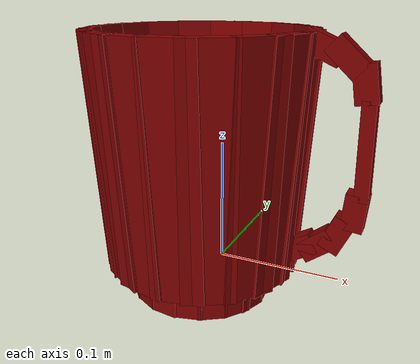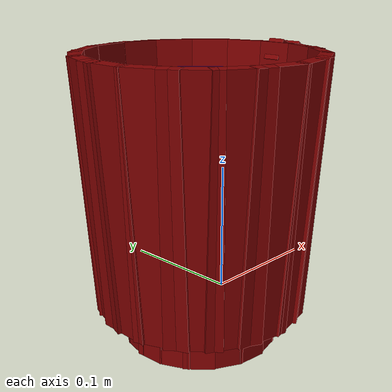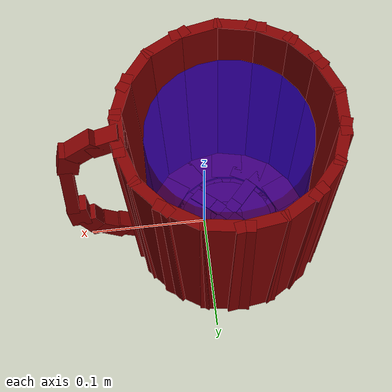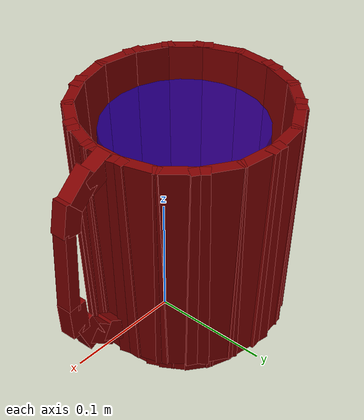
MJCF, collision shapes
<mujoco model="model">
  <option timestep="0.002" gravity="0.0 0.0 -9.81"/>
  <compiler angle="radian"/>
  <asset>
    <mesh file="visuals/blade.obj" name="blade_vis"/>
    <mesh file="visuals/pitcher.obj" name="pitcher_vis"/>
    <mesh file="visuals/pitcher_main.obj" name="pitcher_main_vis"/>
    <texture file="visuals/T_BC001.png" name="pitcher_material" type="2d"/>
    <material name="pitcher_material" rgba="1 1 1 1.0" texture="pitcher_material" shininess="0.4472135901451111" specular="0.3103448502657381"/>
    <texture file="visuals/T_BC001.png" name="blade_material" type="2d"/>
    <material name="blade_material" rgba="1 1 1 1.0" texture="blade_material" shininess="0.4472135901451111" specular="0.3103448502657381"/>
    <material name="pitcher_main_material" rgba="0.03639296442270279 0.03639296442270279 0.03639296442270279 0.75" shininess="0.4472135901451111" specular="0.3103448502657381"/>
  </asset>
  <default>
    <default class="visual">
      <geom conaffinity="0" contype="0" group="1" type="mesh"/>
    </default>
    <default class="collision">
      <geom group="0" rgba="0.5 0 0 0.5" density="1.0" solref="0.004 1" solimp="0.998 0.998 0.001"/>
    </default>
    <default class="spawn">
      <geom group="0" rgba="1 1 1 0.5" contype="0" conaffinity="0"/>
      <site group="0" rgba="1 1 1 0.5"/>
    </default>
    <default class="region">
      <geom group="1" conaffinity="0" contype="0" rgba="0 1 0 0" mass="0"/>
    </default>
  </default>
  <worldbody>
    <body>
      <body name="object">
        <body name="pitcher">
          <geom mesh="pitcher_vis" type="mesh" solimp="0.998 0.998 0.001" solref="0.001 1" friction="0.95 0.3 0.1" class="visual" material="pitcher_material"/>
          <geom type="cylinder" pos="-0.01946600 0.00450799 -0.00774487" size="0.04143597558140755 0.007566837128251791" quat="1.0 0.0 0.0 0.0" class="collision"/>
          <geom type="cylinder" pos="-0.01946600 0.00450799 0.00280278" size="0.01418313104659319 0.012319022789597511" quat="1.0 0.0 0.0 0.0" class="collision"/>
          <geom class="collision" type="box" pos="0.11265081 0.00453653 0.10631804" size="0.005383961834013462 0.007043835241347551 0.038118090480566025" quat="1.0 0.0 0.0 0.0" name="pitcher_handle_0"/>
          <geom class="collision" type="box" pos="0.10898329 0.00453653 0.15569367" size="0.008588218130171299 0.007043835241347551 0.014595777727663517" quat="0.9973220229148865 -8.794946379248741e-16 -0.07313574850559235 -9.826434776982751e-09" name="pitcher_handle_1"/>
          <geom class="collision" type="box" pos="0.09490363 0.00453653 0.17371806" size="0.008588218130171299 0.007043835241347551 0.014595777727663517" quat="0.9171411991119385 -8.441334687725541e-15 -0.398562490940094 -5.355040144650047e-08" name="pitcher_handle_2"/>
          <geom class="collision" type="box" pos="0.07812853 0.00453653 0.17960113" size="0.008588218130171299 0.007043835241347551 0.014595777727663517" quat="0.5457764863967896 -6.594723411020714e-14 0.8379307985305786 1.1258333643127116e-07" name="pitcher_handle_3"/>
          <geom class="collision" type="box" pos="0.08133287 0.00453653 0.02587470" size="0.008588218130171299 0.007043835241347551 0.014595777727663517" quat="0.4469589293003082 -2.5602803432889232e-08 -0.8945544958114624 1.0351514134754325e-07" name="pitcher_handle_4"/>
          <geom class="collision" type="box" pos="0.09657864 0.00453653 0.03780231" size="0.008588218130171299 0.007043835241347551 0.014595777727663517" quat="0.9753509759902954 1.99597174344035e-08 0.2206592708826065 -7.55773399419013e-08" name="pitcher_handle_5"/>
          <geom class="collision" type="box" pos="0.10848565 0.00453653 0.05852125" size="0.008588218130171299 0.007043835241347551 0.014595777727663517" quat="0.9985536336898804 3.814504545562869e-10 0.05376478657126427 -1.2425408257854542e-08" name="pitcher_handle_6"/>
          <geom class="collision" type="box" pos="0.06625793 0.00453653 0.02041277" size="0.008588218130171299 0.007043835241347551 0.014595777727663517" quat="0.503902018070221 -1.1074689609813504e-08 -0.8637608289718628 1.0884013335044074e-07" name="pitcher_handle_7"/>
          <body name="blade">
            <geom mesh="blade_vis" type="mesh" solimp="0.998 0.998 0.001" solref="0.001 1" friction="0.95 0.3 0.1" class="visual" material="blade_material"/>
            <geom type="box" pos="-0.00143279 0.02232428 0.02188554" size="0.01079723984003067 0.005815119948238134 0.000714024412445724" quat="0.9160147905349731 0.0469263419508934 -0.11247249692678452 0.3821842074394226" class="collision"/>
            <geom type="box" pos="-0.01261811 0.01105387 0.01896857" size="0.005312731955200434 0.005815119948238134 0.0007140241796150804" quat="0.9225776791572571 0.01007954590022564 -0.024158546701073647 0.3849223256111145" class="collision"/>
            <geom type="box" pos="-0.03743484 -0.01396034 0.02174274" size="0.01079723984003067 0.005815119948238134 0.000714024412445724" quat="0.3842061460018158 -0.10841871798038483 -0.04944855719804764 -0.9155248999595642" class="collision"/>
            <geom type="box" pos="-0.02628030 -0.00263698 0.01891433" size="0.005312731955200434 0.005815119948238134 0.0007140241796150804" quat="0.38717636466026306 -0.02017034962773323 -0.012396342121064663 -0.9217016696929932" class="collision"/>
            <geom type="box" pos="-0.03744579 0.02238029 0.01561825" size="0.01079723984003067 0.005815119948238134 0.000714024412445724" quat="0.3805498480796814 -0.11204993724822998 0.046787749975919724 0.9167538285255432" class="collision"/>
            <geom type="box" pos="-0.01264914 -0.00263521 0.01855803" size="0.005312731955200434 0.005815119948238134 0.0007140241796150804" quat="0.9242292642593384 0.005514008924365044 0.023519031703472137 -0.38107314705848694" class="collision"/>
            <geom type="box" pos="-0.00140377 -0.01386479 0.01571539" size="0.01079723984003067 0.005815119948238134 0.000714024412445724" quat="0.917720377445221 0.0420127734541893 0.11199421435594559 -0.37878960371017456" class="collision"/>
            <geom type="box" pos="-0.02624793 0.01111868 0.01852104" size="0.005312731955200434 0.005815119948238134 0.0007140241796150804" quat="0.38328221440315247 -0.023667166009545326 0.010098296217620373 0.9232727885246277" class="collision"/>
            <geom type="box" pos="-0.01264914 -0.00263521 0.01855803" size="0.005312731955200434 0.005815119948238134 0.0007140241796150804" quat="0.9242292642593384 0.005514008924365044 0.023519031703472137 -0.38107314705848694" class="collision"/>
            <geom type="box" pos="-0.01942937 0.00421665 0.01875078" size="0.004505713935941458 0.004514103289693594 0.0007243526051752269" quat="0.9257199764251709 0.0 -0.0 -0.37820965051651" class="collision"/>
          </body>
          <body name="pitcher_main">
            <geom class="region" type="cylinder" size="0.06828898936510086 0.07171516120433807" pos="-0.01954737 0.00488804 0.09894828" rgba="0 0 1 0.5" name="reg_int"/>
            <geom mesh="pitcher_main_vis" type="mesh" solimp="0.998 0.998 0.001" solref="0.001 1" friction="0.95 0.3 0.1" class="visual" material="pitcher_main_material"/>
            <geom type="box" pos="0.06165763 0.00451493 0.09213771" size="0.004797820001840591 0.021256864070892334 0.09871997684240341" quat="0.9994385838508606 -1.4167017795566278e-15 0.03350444138050079 4.501618189323153e-09" class="collision"/>
            <geom type="box" pos="0.04225437 0.05740355 0.09213771" size="0.004797819536179304 0.02125686965882778 0.09871996939182281" quat="0.9382874965667725 -0.0115397023037076 0.031454458832740784 0.3442296087741852" class="collision"/>
            <geom type="box" pos="-0.00827662 0.08543458 0.09213771" size="0.004797815345227718 0.021256867796182632 0.09871996939182281" quat="0.7561712265014648 -0.021907974034547806 0.0253493282943964 0.6535155177116394" class="collision"/>
            <geom type="box" pos="-0.06449462 0.07321498 0.09213771" size="0.004797819536179304 0.021256865933537483 0.09871996194124222" quat="0.47799187898635864 -0.02942420355975628 0.016023846343159676 0.8777250051498413" class="collision"/>
            <geom type="box" pos="-0.09809421 0.02919597 0.09213770" size="0.004797817207872868 0.021256865933537483 0.09871994704008102" quat="0.15259899199008942 -0.03311135992407799 0.005115584935992956 0.9877201318740845" class="collision"/>
            <geom type="box" pos="-0.09525025 -0.02780454 0.09213771" size="0.004797815345227718 0.021256865933537483 0.09871996939182281" quat="0.20162884891033173 0.032815542072057724 0.006759255193173885 -0.9788888096809387" class="collision"/>
            <geom type="box" pos="-0.05970805 -0.06705004 0.09213771" size="0.004797820001840591 0.021256867796182632 0.09871996194124222" quat="0.5076490640640259 0.028860589489340782 0.01701805181801319 -0.8609122633934021" class="collision"/>
            <geom type="box" pos="-0.00349718 -0.07555939 0.09213771" size="0.004797819536179304 0.021256867796182632 0.09871997684240341" quat="0.7752306461334229 0.021146109327673912 0.02598826214671135 -0.6307891011238098" class="collision"/>
            <geom type="box" pos="0.04447075 -0.04564265 0.09213771" size="0.004797819536179304 0.021256867796182632 0.0987199917435646" quat="0.9454727172851562 0.010860658250749111 0.03169533982872963 -0.32397347688674927" class="collision"/>
            <geom type="box" pos="0.05809576 0.02838769 0.09213771" size="0.004797820001840591 0.021256865933537483 0.09871996194124222" quat="0.9884965419769287 -0.004944205284118652 0.03313766047358513 0.14748571813106537" class="collision"/>
            <geom type="box" pos="0.05629871 -0.02460230 0.09213771" size="0.004797819536179304 0.021256867796182632 0.09871997684240341" quat="0.9829298257827759 0.006064509507268667 0.03295101597905159 -0.18090449273586273" class="collision"/>
            <geom type="box" pos="0.01915279 -0.06721817 0.09213771" size="0.004797819536179304 0.02125686965882778 0.09871996194124222" quat="0.8598279356956482 0.017079556360840797 0.028824234381318092 -0.5094834566116333" class="collision"/>
            <geom type="box" pos="-0.03709385 -0.07548775 0.09213771" size="0.004797819536179304 0.021256867796182632 0.09871996939182281" quat="0.6291347146034241 0.02603328973054886 0.02109065093100071 -0.7765738368034363" class="collision"/>
            <geom type="box" pos="-0.08254409 -0.04832650 0.09213771" size="0.004797820001840591 0.021256867796182632 0.09871996939182281" quat="0.34387457370758057 0.031458817422389984 0.011527794413268566 -0.9384176731109619" class="collision"/>
            <geom type="box" pos="-0.10190295 0.00536135 0.09213771" size="0.0047978186048567295 0.021256865933537483 0.09871996939182281" quat="0.0051720221526920795 -0.03350399434566498 0.00017338321777060628 0.9994251728057861" class="collision"/>
            <geom type="box" pos="-0.08261613 0.05727113 0.09213771" size="0.004797820001840591 0.021256865933537483 0.09871997684240341" quat="0.3432343602180481 -0.03146668151021004 0.011506336741149426 0.9386520385742188" class="collision"/>
            <geom type="box" pos="-0.03241356 0.08536888 0.09213771" size="0.004797820001840591 0.021256865933537483 0.09871996194124222" quat="0.6514542698860168 -0.025408880785107613 0.021838875487446785 0.7579477429389954" class="collision"/>
            <geom type="box" pos="0.02409909 0.07330893 0.09213771" size="0.004797819536179304 0.02125686965882778 0.09871996939182281" quat="0.8772175908088684 -0.016055047512054443 0.02940719574689865 0.4789225459098816" class="collision"/>
            <geom type="box" pos="0.03652608 -0.01725264 -0.00408595" size="0.014097915031015873 0.013783157803118229 0.0020905467681586742" quat="0.983661949634552 1.4869330766664746e-10 -2.7213188300012625e-11 -0.18002544343471527" class="collision"/>
            <geom type="box" pos="0.01296338 -0.04647587 -0.00408595" size="0.014097914099693298 0.013783156871795654 0.0020905453711748123" quat="0.8787503838539124 1.3283457667156995e-10 -7.214734365490472e-11 -0.4772816002368927" class="collision"/>
            <geom type="box" pos="-0.02703209 -0.05576663 -0.00408595" size="0.014097915031015873 0.013783157803118229 0.002090544207021594" quat="0.6637383699417114 1.0033272823672945e-10 -1.1306464098304048e-10 -0.7479647994041443" class="collision"/>
            <geom type="box" pos="-0.06448396 -0.03645187 -0.00408595" size="0.014097915031015873 0.013783157803118229 0.0020905467681586742" quat="0.3605376183986664 5.449997050877009e-11 -1.4099650613719206e-10 -0.9327446818351746" class="collision"/>
            <geom type="box" pos="-0.07998958 -0.00042312 -0.00408595" size="0.014097915962338448 0.013783158734440804 0.0020905453711748123" quat="0.0375555194914341 5.67709421139817e-12 -1.5105827699812835e-10 -0.9992945194244385" class="collision"/>
            <geom type="box" pos="-0.06987263 0.03778844 -0.00408595" size="0.014097915031015873 0.013783157803118229 0.0020905467681586742" quat="0.29206669330596924 4.414969084765019e-11 1.445720348991486e-10 0.9563979506492615" class="collision"/>
            <geom type="box" pos="-0.03933844 0.06116776 -0.00408595" size="0.014097915962338448 0.013783158734440804 0.0020905453711748123" quat="0.5818083882331848 8.794792671906748e-11 1.229448071127237e-10 0.8133258819580078" class="collision"/>
            <geom type="box" pos="-0.00013555 0.06108140 -0.00408595" size="0.014097915962338448 0.013783158734440804 0.0020905467681586742" quat="0.8146055936813354 1.2313829123034026e-10 8.767690740096867e-11 0.5800153017044067" class="collision"/>
            <geom type="box" pos="0.03082697 0.03675691 -0.00408595" size="0.014097915031015873 0.013783157803118229 0.002090544207021594" quat="0.959339439868927 1.450167208538744e-10 4.266653350071259e-11 0.2822549343109131" class="collision"/>
            <geom type="box" pos="0.04022907 0.00907495 -0.00408595" size="0.014097917824983597 0.013783160597085953 0.0020905467681586742" quat="0.9991481900215149 1.5103426842522083e-10 6.238013577908319e-12 0.0412667915225029" class="collision"/>
            <geom type="box" pos="0.03457299 0.03003524 -0.00408595" size="0.014097915031015873 0.013783157803118229 0.00209054839797318" quat="0.9753949642181396 1.47443668385705e-10 3.3326119641685636e-11 0.22046473622322083" class="collision"/>
            <geom type="box" pos="0.01597625 0.05259297 -0.00408595" size="0.014097917824983597 0.013783160597085953 0.0020905453711748123" quat="0.8928526639938354 1.349663159011527e-10 6.807611419024084e-11 0.4503489136695862" class="collision"/>
            <geom type="box" pos="-0.02159430 0.06437484 -0.00408595" size="0.01418222114443779 0.01448780857026577 0.002090529538691044" quat="1.0 0.0 0.0 0.0" class="collision"/>
            <geom type="box" pos="-0.05828671 0.05057117 -0.00408595" size="0.014097915031015873 0.013783157803118229 0.0020905467681586742" quat="0.42588338255882263 6.437782251733637e-11 1.3676898502623658e-10 0.9047780632972717" class="collision"/>
            <geom type="box" pos="-0.07856151 0.01789301 -0.00408595" size="0.014097915031015873 0.013783157803118229 0.0020905467681586742" quat="0.1151188462972641 1.74017154852546e-11 1.5015806653639885e-10 0.9933516979217529" class="collision"/>
            <geom type="box" pos="-0.07448936 -0.02142483 -0.00408595" size="0.014097915962338448 0.013783158734440804 0.0020905467681586742" quat="0.21684034168720245 3.2778245395714833e-11 -1.4756643129665292e-10 -0.9762070775032043" class="collision"/>
            <geom type="box" pos="-0.04722853 -0.04962666 -0.00408595" size="0.014097915031015873 0.013783157803118229 0.0020905453711748123" quat="0.5225650072097778 7.899250004106406e-11 -1.2888151657008962e-10 -0.8525994420051575" class="collision"/>
            <geom type="box" pos="-0.00536357 -0.05442521 -0.00408595" size="0.014097917824983597 0.013783160597085953 0.002090544207021594" quat="0.7875469326972961 1.1904797980744064e-10 -9.31549282157107e-11 -0.6162546873092651" class="collision"/>
            <geom type="box" pos="0.02874897 -0.03157153 -0.00408595" size="0.014097915031015873 0.013783157803118229 0.0020905467681586742" quat="0.9503161907196045 1.436526592124565e-10 -4.7054967561299677e-11 -0.31128624081611633" class="collision"/>
            <geom type="box" pos="0.04043443 0.00410266 -0.00507593" size="0.014097639359533787 0.013782882131636143 0.0020905123092234135" quat="1.0 0.0 0.0 0.0" class="collision"/>
            <geom type="box" pos="0.02658990 -0.01346294 -0.01914299" size="0.009812936186790466 0.011892476119101048 0.01440267264842987" quat="0.983661949634552 1.4869330766664746e-10 -2.7213188300012625e-11 -0.18002544343471527" class="collision"/>
            <geom type="box" pos="0.00717126 -0.03752744 -0.01914299" size="0.00980029720813036 0.011892472393810749 0.01440267264842987" quat="0.8787503838539124 1.3283457667156995e-10 -7.214734365490472e-11 -0.4772816002368927" class="collision"/>
            <geom type="box" pos="-0.02581365 -0.04554411 -0.01914299" size="0.010167481377720833 0.011892477981746197 0.014402669854462147" quat="0.6637383699417114 1.0033272823672945e-10 -1.1306464098304048e-10 -0.7479647994041443" class="collision"/>
            <geom type="box" pos="-0.05712890 -0.02973733 -0.01914299" size="0.010493009351193905 0.011892473325133324 0.01440267264842987" quat="0.3605376183986664 5.449997050877009e-11 -1.4099650613719206e-10 -0.9327446818351746" class="collision"/>
            <geom type="box" pos="-0.06995400 0.00036008 -0.01914299" size="0.01036880910396576 0.011892478913068771 0.01440267264842987" quat="0.0375555194914341 5.67709421139817e-12 -1.5105827699812835e-10 -0.9992945194244385" class="collision"/>
            <geom type="box" pos="-0.06137344 0.03208955 -0.01914299" size="0.010184808634221554 0.011892474256455898 0.01440267264842987" quat="0.29206669330596924 4.414969084765019e-11 1.445720348991486e-10 0.9563979506492615" class="collision"/>
            <geom type="box" pos="-0.03590959 0.05114159 -0.01914299" size="0.00981199461966753 0.011892472393810749 0.01440267264842987" quat="0.5818083882331848 8.794792671906748e-11 1.229448071127237e-10 0.8133258819580078" class="collision"/>
            <geom type="box" pos="-0.00370223 0.05081420 -0.01914299" size="0.00954082328826189 0.011892472393810749 0.01440267264842987" quat="0.8146055936813354 1.2313829123034026e-10 8.767690740096867e-11 0.5800153017044067" class="collision"/>
            <geom type="box" pos="0.02139900 0.03071261 -0.01914299" size="0.009223192930221558 0.011892476119101048 0.01440267264842987" quat="0.959339439868927 1.450167208538744e-10 4.266653350071259e-11 0.2822549343109131" class="collision"/>
            <geom type="box" pos="0.02944653 0.00372189 -0.01914299" size="0.009248089045286179 0.011892478913068771 0.014402669854462147" quat="0.9991481900215149 1.5103426842522083e-10 6.238013577908319e-12 0.0412667915225029" class="collision"/>
            <geom type="box" pos="0.02646283 0.02177845 -0.01914299" size="0.008628114126622677 0.011892474256455898 0.014402675442397594" quat="0.9753949642181396 1.47443668385705e-10 3.3326119641685636e-11 0.22046473622322083" class="collision"/>
            <geom type="box" pos="0.00945335 0.04379833 -0.01914299" size="0.009464828297495842 0.011892473325133324 0.014402669854462147" quat="0.8928526639938354 1.349663159011527e-10 6.807611419024084e-11 0.4503489136695862" class="collision"/>
            <geom type="box" pos="-0.02135918 0.05341964 -0.01914299" size="0.0122368223965168 0.00978539977222681 0.014402681961655617" quat="1.0 0.0 0.0 0.0" class="collision"/>
            <geom type="box" pos="-0.05177306 0.04271853 -0.01914299" size="0.010209841653704643 0.011892473325133324 0.01440267264842987" quat="0.42588338255882263 6.437782251733637e-11 1.3676898502623658e-10 0.9047780632972717" class="collision"/>
            <geom type="box" pos="-0.06846853 0.01554890 -0.01914299" size="0.010064947418868542 0.011892477981746197 0.014402673579752445" quat="0.1151188462972641 1.74017154852546e-11 1.5015806653639885e-10 0.9933516979217529" class="collision"/>
            <geom type="box" pos="-0.06539303 -0.01714528 -0.01914299" size="0.010391995310783386 0.011892476119101048 0.01440267264842987" quat="0.21684034168720245 3.2778245395714833e-11 -1.4756643129665292e-10 -0.9762070775032043" class="collision"/>
            <geom type="box" pos="-0.04259763 -0.04050213 -0.01914299" size="0.010226324200630188 0.011892476119101048 0.014402669854462147" quat="0.5225650072097778 7.899250004106406e-11 -1.2888151657008962e-10 -0.8525994420051575" class="collision"/>
            <geom type="box" pos="-0.00793487 -0.04402787 -0.01914299" size="0.009752041660249233 0.011892474256455898 0.014402667991816998" quat="0.7875469326972961 1.1904797980744064e-10 -9.31549282157107e-11 -0.6162546873092651" class="collision"/>
            <geom type="box" pos="0.02011507 -0.02520959 -0.01914299" size="0.009728861972689629 0.011892473325133324 0.014402669854462147" quat="0.9503161907196045 1.436526592124565e-10 -4.7054967561299677e-11 -0.31128624081611633" class="collision"/>
          </body>
        </body>
        <geom class="region" name="reg_bbox" density="0" type="box" pos="0.0 0.0035589999999999997 0.0789845" size="0.11723 0.08313200000000001 0.11383249999999999"/>
      </body>
      <site name="anchor_site" size="0.005" pos="-0.01947398 0.00445987 0.1983805" rgba="0 1 0 0"/>
    </body>
  </worldbody>
</mujoco>
